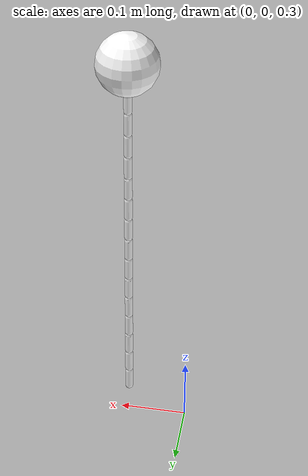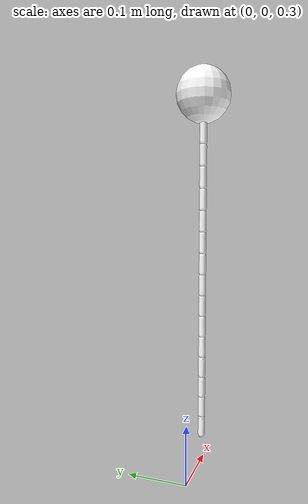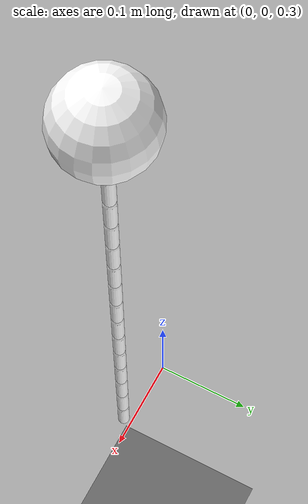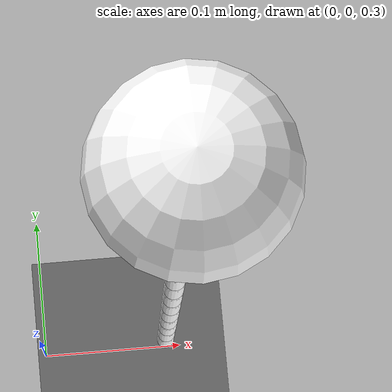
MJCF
<mujoco model="panda nohand">
  <compiler angle="radian" meshdir="assets" autolimits="true"/>

  <default>
    <default class="panda">
      <material specular="0.5" shininess="0.25"/>
      <joint armature="0.1" damping="1" axis="0 0 1" range="-2.8973 2.8973" type="hinge"/>
      <general dyntype="none" biastype="affine" ctrlrange="-2.8973 2.8973" forcerange="-87 87"/>
      <default class="finger">
        <joint axis="0 1 0" type="slide" range="0 0.04"/>
      </default>

      <default class="panda/visual">
        <geom type="mesh" contype="0" conaffinity="0" group="2" margin="1.0" gap="1.0"/>
      </default>
      <default class="panda/collision">
        <geom type="mesh" group="3" margin="1.0" gap="1.0"/>
      </default>
      <site size="0.001" rgba="0.5 0.5 0.5 0.3" group="4"/>
    </default>

    <default class="whip">
      <default class="X">
        <joint type="hinge" axis="1 0 0" pos="0 0 0" springref="0" stiffness="0.242" damping="0.092" />
      </default>
      <default class="Y">
        <joint type="hinge" axis="0 1 0" pos="0 0 0" springref="0" stiffness="0.242" damping="0.092" />
      </default>
      <default class="Z">
        <geom type="capsule" material="white" fromto="0 0 0 0 0 0.03" size="0.006" mass="0.012" />
      </default>
    </default>

    <default class="target">
      <geom rgba=".5 .5 .5 .4" group="3"/>
    </default>
  </default>

  <custom>
	  <!-- brax custom params -->
  </custom>

  <asset>
    <texture builtin="gradient" height="100" rgb1=".4 .5 .6" rgb2="0 0 0" type="skybox" width="100"/>
    <texture builtin="flat" height="1278" mark="cross" markrgb="1 1 1" name="texgeom" random="0.01" rgb1="0.8 0.6 0.4" rgb2="0.8 0.6 0.4" type="cube" width="127"/>
    <texture builtin="checker" height="100" name="texplane" rgb1="0 0 0" rgb2="0.8 0.8 0.8" type="2d" width="100"/>
    <material name="MatPlane" reflectance="0.5" shininess="1" specular="1" texrepeat="60 60" texture="texplane"/>
    <material name="geom" texture="texgeom" texuniform="true"/>

    <material class="panda" name="white" rgba="1 1 1 1"/>
    <material class="panda" name="off_white" rgba="0.901961 0.921569 0.929412 1"/>
    <material class="panda" name="dark_grey" rgba="0.25 0.25 0.25 1"/>
    <material class="panda" name="green" rgba="0 1 0 1"/>
    <material class="panda" name="light_blue" rgba="0.039216 0.541176 0.780392 1"/>

    <!-- Collision meshes -->
    <mesh name="link0_c" file="link0.stl"/>
    <mesh name="link1_c" file="link1.stl"/>
    <mesh name="link2_c" file="link2.stl"/>
    <mesh name="link3_c" file="link3.stl"/>
    <mesh name="link4_c" file="link4.stl"/>
    <mesh name="link5_c0" file="link5_collision_0.obj"/>
    <mesh name="link5_c1" file="link5_collision_1.obj"/>
    <mesh name="link5_c2" file="link5_collision_2.obj"/>
    <mesh name="link6_c" file="link6.stl"/>
    <mesh name="link7_c" file="link7.stl"/>

  </asset>

  <worldbody>
    <light cutoff="100" diffuse="1 1 1" dir="-0 0 -1.3" directional="true" exponent="1" pos="0 0 1.3" specular=".1 .1 .1"/>
    <geom material="MatPlane" name="floor" pos="0 0 0" size="20 20 0.125" type="plane"/>
    <body name="link0" childclass="panda">
      <joint name="dummy0" axis="0 1 0" type="hinge" range="-1e-6 1e-6" pos="0 0 0"/>
      <joint name="dummy1" axis="1 0 0" type="hinge" range="-1e-6 1e-6" pos="0 0 0"/>
      <inertial mass="0.629769" pos="-0.041018 -0.00014 0.049974"
        fullinertia="0.00315 0.00388 0.004285 8.2904e-7 0.00015 8.2299e-6"/>
      <geom mesh="link0_c" class="panda/collision"/>
      <body name="link1" pos="0 0 0.333">
        <inertial mass="4.970684" pos="0.003875 0.002081 -0.04762"
          fullinertia="0.70337 0.70661 0.0091170 -0.00013900 0.0067720 0.019169"/>
        <joint name="joint1"/>
        <geom mesh="link1_c" class="panda/collision"/>
        <body name="link2" quat="1 -1 0 0">
          <inertial mass="0.646926" pos="-0.003141 -0.02872 0.003495"
            fullinertia="0.0079620 2.8110e-2 2.5995e-2 -3.925e-3 1.0254e-2 7.04e-4"/>
          <joint name="joint2" range="-1.7628 1.7628"/>
          <geom mesh="link2_c" class="panda/collision"/>
          <body name="link3" pos="0 -0.316 0" quat="1 1 0 0">
            <joint name="joint3"/>
            <inertial mass="3.228604" pos="2.7518e-2 3.9252e-2 -6.6502e-2"
              fullinertia="3.7242e-2 3.6155e-2 1.083e-2 -4.761e-3 -1.1396e-2 -1.2805e-2"/>
            <geom mesh="link3_c" class="panda/collision"/>
            <body name="link4" pos="0.0825 0 0" quat="1 1 0 0">
              <inertial mass="3.587895" pos="-5.317e-2 1.04419e-1 2.7454e-2"
                fullinertia="2.5853e-2 1.9552e-2 2.8323e-2 7.796e-3 -1.332e-3 8.641e-3"/>
              <joint name="joint4" range="-3.0718 -0.0698"/>
              <geom mesh="link4_c" class="panda/collision"/>
              <body name="link5" pos="-0.0825 0.384 0" quat="1 -1 0 0">
                <inertial mass="1.225946" pos="-1.1953e-2 4.1065e-2 -3.8437e-2"
                  fullinertia="3.5549e-2 2.9474e-2 8.627e-3 -2.117e-3 -4.037e-3 2.29e-4"/>
                <joint name="joint5"/>
                <geom mesh="link5_c0" class="panda/collision"/>
                <geom mesh="link5_c1" class="panda/collision"/>
                <geom mesh="link5_c2" class="panda/collision"/>
                <body name="link6" quat="1 1 0 0">
                  <inertial mass="1.666555" pos="6.0149e-2 -1.4117e-2 -1.0517e-2"
                    fullinertia="1.964e-3 4.354e-3 5.433e-3 1.09e-4 -1.158e-3 3.41e-4"/>
                  <joint name="joint6" range="-0.0175 3.7525"/>
                  <geom mesh="link6_c" class="panda/collision"/>
                  <body name="link7" pos="0.088 0 0" quat="1 1 0 0">
                    <inertial mass="7.35522e-01" pos="1.0517e-2 -4.252e-3 6.1597e-2"
                      fullinertia="1.2516e-2 1.0027e-2 4.815e-3 -4.28e-4 -1.196e-3 -7.41e-4"/>
                    <joint name="joint7"/>
                    <geom mesh="link7_c" class="panda/collision"/>
                    <!-- whip begin-->
                    <geom type="sphere" pos="0 0 0.107" size="0.045" material="white" contype="0" conaffinity="0"/>
                      <body name="B0" pos="0 0 0.152" childclass="whip">
                        <joint class="X"/>
                        <joint class="Y"/>
                        <geom class="Z"/>
                      <body name="B1" pos="0 0 0.036">
                        <joint class="X"/>
                        <joint class="Y"/>
                        <geom class="Z"/>
                      <body name="B2" pos="0 0 0.036">
                        <joint class="X"/>
                        <joint class="Y"/>
                        <geom class="Z"/>
                      <body name="B3" pos="0 0 0.036">
                        <joint class="X"/>
                        <joint class="Y"/>
                        <geom class="Z"/>
                      <body name="B4" pos="0 0 0.036">
                        <joint class="X"/>
                        <joint class="Y"/>
                        <geom class="Z"/>
                      <body name="B5" pos="0 0 0.036">
                        <joint class="X"/>
                        <joint class="Y"/>
                        <geom class="Z"/>
                      <body name="B6" pos="0 0 0.036">
                        <joint class="X"/>
                        <joint class="Y"/>
                        <geom class="Z"/>
                      <body name="B7" pos="0 0 0.036">
                        <joint class="X"/>
                        <joint class="Y"/>
                        <geom class="Z"/>
                      <body name="B8" pos="0 0 0.036">
                        <joint class="X"/>
                        <joint class="Y"/>
                        <geom class="Z"/>
                      <body name="B9" pos="0 0 0.036">
                        <joint class="X"/>
                        <joint class="Y"/>
                        <geom class="Z"/>
                      <body name="B10" pos="0 0 0.036">
                        <joint class="X"/>
                        <joint class="Y"/>
                        <geom class="Z"/>
                      <body name="B11" pos="0 0 0.036">
                        <joint class="X"/>
                        <joint class="Y"/>
                        <geom class="Z"/>
                      <body name="B12" pos="0 0 0.036">
                        <joint class="X"/>
                        <joint class="Y"/>
                        <geom class="Z"/>
                      <body name="B13" pos="0 0 0.036">
                        <joint class="X"/>
                        <joint class="Y"/>
                        <geom class="Z"/>
                      <body name="B14" pos="0 0 0.036">
                        <joint class="X"/>
                        <joint class="Y"/>
                        <geom class="Z"/>
                    </body>
                    </body>
                    </body>
                    </body>
                    </body>
                    </body>
                    </body>
                    </body>
                    </body>
                    </body>
                    </body>
                    </body>
                    </body>
                    </body>
                    </body>
                      <!-- whip end -->
                  </body>
                </body>
              </body>
            </body>
          </body>
        </body>
      </body>
    </body>

    <body name="target" pos="-0.9 0 1.0">
      <geom type="sphere" size=".05 .05 .05" class="target" name="target"/>
      <freejoint name="target"/>
    </body>
  </worldbody>

  <actuator>
    <general class="panda" name="actuator1" joint="joint1" gainprm="4500" biasprm="0 -4500 -450"/>
    <general class="panda" name="actuator2" joint="joint2" gainprm="4500" biasprm="0 -4500 -450"
      ctrlrange="-1.7628 1.7628"/>
    <general class="panda" name="actuator3" joint="joint3" gainprm="3500" biasprm="0 -3500 -350"/>
    <general class="panda" name="actuator4" joint="joint4" gainprm="3500" biasprm="0 -3500 -350"
      ctrlrange="-3.0718 -0.0698"/>
    <general class="panda" name="actuator5" joint="joint5" gainprm="2000" biasprm="0 -2000 -200" forcerange="-12 12"/>
    <general class="panda" name="actuator6" joint="joint6" gainprm="2000" biasprm="0 -2000 -200" forcerange="-12 12"
      ctrlrange="-0.0175 3.7525"/>
    <general class="panda" name="actuator7" joint="joint7" gainprm="2000" biasprm="0 -2000 -200" forcerange="-12 12"/>
  </actuator>

</mujoco>
